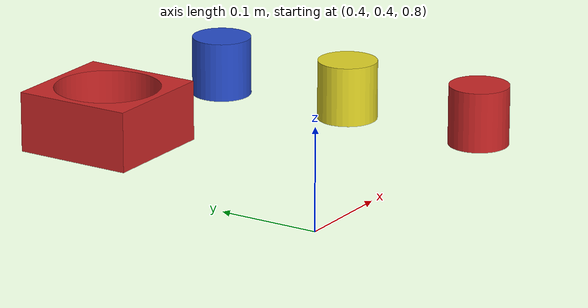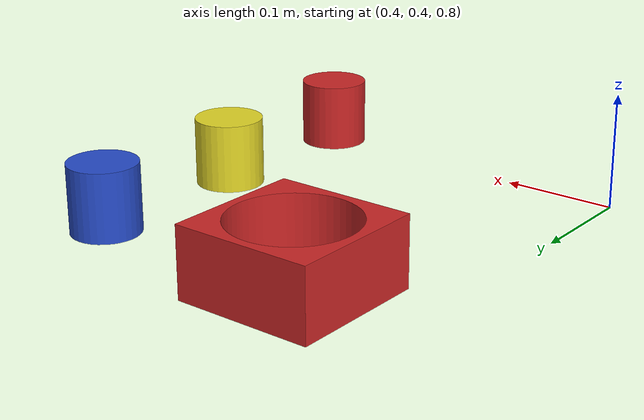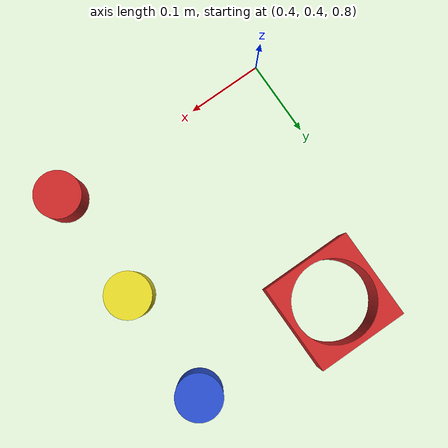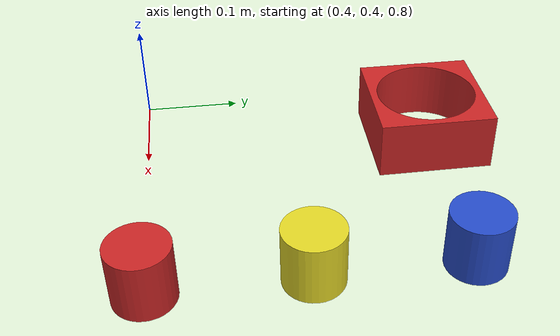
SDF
<sdf version="1.4">
 <world name="default">
  <physics type="ode">
   <gravity>0 0 -9.81</gravity>
   <ode>
    <solver><type>quick</type><iters>20</iters><sor>1.0</sor></solver>
    <constraints>
     <cfm>0.0</cfm>
     <erp>0.2</erp>
     <contact_max_correcting_vel>100.0</contact_max_correcting_vel>
     <contact_surface_layer>0.0</contact_surface_layer>
    </constraints>
   </ode>
   <real_time_update_rate>1000</real_time_update_rate>
   <max_step_size>0.001</max_step_size>
  </physics>
  <light type="directional" name="light1">
   <pose>2 0 10 0 0 0</pose>
   <diffuse>1.0 1.0 1.0 1</diffuse>
   <specular>0.1 0.1 0.1 1</specular>
   <attenuation>
    <range>20</range>
    <constant>0.9</constant>
    <linear>0.01</linear>
    <quadratic>0.001</quadratic>
   </attenuation>
   <direction>0.2 0.0 -1.0</direction>
  </light>
  <include><uri>model://ground_plane</uri></include>
  <include><uri>model://0cylinder_red</uri><pose>0.7 0.4 0.83 0 0 0</pose></include>
  <include><uri>model://0cylinder_yellow</uri><pose>0.7 0.55 0.83 0 0 0</pose></include>
  <include><uri>model://0cylinder_blue</uri><pose>0.7 0.7 0.83 0 0 0</pose></include>
  <include><uri>model://0hole_red</uri><pose>0.5 0.7 0.83 0 0 0</pose></include>
 </world>
</sdf>

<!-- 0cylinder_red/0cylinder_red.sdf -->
<sdf version='1.4'>
  <model name="0cylinder_red">
      <static>0</static>
      <link name='link'>
        <inertial>
          <mass>0.25</mass>
          <inertia>
            <ixx>0.000041667</ixx>
            <ixy>0.000000</ixy>
            <ixz>0.000000</ixz>
            <iyy>0.000041667</iyy>
            <iyz>0.000000</iyz>
            <izz>0.000041667</izz>
          </inertia>
        </inertial>
        <visual name='visual'>
 	  <material>
            <script>
              <uri>file://media/materials/scripts/gazebo.material</uri>
              <name>Gazebo/Red</name>
            </script>
  	  </material>
          <geometry>
            <mesh>
              <uri>model://0cylinder_red/meshes/0cylinder_red.dae</uri>
	          <scale> 1 1 1 </scale>
            </mesh>
          </geometry>
        </visual>
        <collision name='collision'>
          <geometry>
            <box>
              <size>0.06 0.06 0.06</size>
            </box>
          </geometry>
          <surface>
            <friction>
              <ode>
                <mu>30000.0</mu>
                <mu2>30000.0</mu2>
              </ode>
            </friction>
            <contact>
              <ode>
                <kp>1000000.0</kp>
                <kd>100.0</kd>
                <max_vel>1.0</max_vel>
                <min_depth>0.0025</min_depth>
              </ode>
            </contact>
          </surface>
        </collision>
        <velocity_decay>
          <linear>0.000000</linear>
          <angular>0.000000</angular>
        </velocity_decay>
        <self_collide>0</self_collide>
        <kinematic>0</kinematic>
        <gravity>1</gravity>
      </link>
  </model>
</sdf>

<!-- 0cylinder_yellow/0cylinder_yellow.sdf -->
<sdf version='1.4'>
  <model name="0cylinder_yellow">
      <static>0</static>
      <link name='link'>
        <inertial>
          <mass>0.25</mass>
          <inertia>
            <ixx>0.000041667</ixx>
            <ixy>0.000000</ixy>
            <ixz>0.000000</ixz>
            <iyy>0.000041667</iyy>
            <iyz>0.000000</iyz>
            <izz>0.000041667</izz>
          </inertia>
        </inertial>
        <visual name='visual'>
	  <material>
            <script>
              <uri>file://media/materials/scripts/gazebo.material</uri>
              <name>Gazebo/Yellow</name>
            </script>
  	  </material>
          <geometry>
            <mesh>
              <uri>model://0cylinder_yellow/meshes/0cylinder_yellow.dae</uri>
	          <scale> 1 1 1 </scale>
            </mesh>
          </geometry>
        </visual>
        <collision name='collision'>
          <geometry>
            <box>
              <size>0.06 0.06 0.06</size>
            </box>
          </geometry>
          <surface>
            <friction>
              <ode>
                <mu>30000.0</mu>
                <mu2>30000.0</mu2>
              </ode>
            </friction>
            <contact>
              <ode>
                <kp>1000000.0</kp>
                <kd>100.0</kd>
                <max_vel>1.0</max_vel>
                <min_depth>0.0025</min_depth>
              </ode>
            </contact>
          </surface>
        </collision>
        <velocity_decay>
          <linear>0.000000</linear>
          <angular>0.000000</angular>
        </velocity_decay>
        <self_collide>0</self_collide>
        <kinematic>0</kinematic>
        <gravity>1</gravity>
      </link>
  </model>
</sdf>

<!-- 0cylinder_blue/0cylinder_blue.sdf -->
<sdf version='1.4'>
  <model name="0cylinder_blue">
      <static>0</static>
      <link name='link'>
        <inertial>
          <mass>0.25</mass>
          <inertia>
            <ixx>0.000041667</ixx>
            <ixy>0.000000</ixy>
            <ixz>0.000000</ixz>
            <iyy>0.000041667</iyy>
            <iyz>0.000000</iyz>
            <izz>0.000041667</izz>
          </inertia>
        </inertial>
        <visual name='visual'>
 	  <material>
            <script>
              <uri>file://media/materials/scripts/gazebo.material</uri>
              <name>Gazebo/Blue</name>
            </script>
  	  </material>
          <geometry>
            <mesh>
              <uri>model://0cylinder_blue/meshes/0cylinder_blue.dae</uri>
	          <scale> 1 1 1 </scale>
            </mesh>
          </geometry>
        </visual>
        <collision name='collision'>
          <geometry>
            <box>
              <size>0.06 0.06 0.06</size>
            </box>
          </geometry>
          <surface>
            <friction>
              <ode>
                <mu>30000.0</mu>
                <mu2>30000.0</mu2>
              </ode>
            </friction>
            <contact>
              <ode>
                <kp>1000000.0</kp>
                <kd>100.0</kd>
                <max_vel>1.0</max_vel>
                <min_depth>0.0025</min_depth>
              </ode>
            </contact>
          </surface>
        </collision>
        <velocity_decay>
          <linear>0.000000</linear>
          <angular>0.000000</angular>
        </velocity_decay>
        <self_collide>0</self_collide>
        <kinematic>0</kinematic>
        <gravity>1</gravity>
      </link>
  </model>
</sdf>

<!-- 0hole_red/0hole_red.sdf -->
<sdf version='1.4'>
  <model name="0hole_red">
      <static>0</static>
      <link name='link'>
        <inertial>
          <mass>250</mass>
          <inertia>
            <ixx>0.000041667</ixx>
            <ixy>0.000000</ixy>
            <ixz>0.000000</ixz>
            <iyy>0.000041667</iyy>
            <iyz>0.000000</iyz>
            <izz>0.000041667</izz>
          </inertia>
        </inertial>
        <visual name='visual'>
	  <material>
            <script>
              <uri>file://media/materials/scripts/gazebo.material</uri>
              <name>Gazebo/Red</name>
            </script>
  	  </material>
          <geometry>
            <mesh>
              <uri>model://0hole_red/meshes/0hole_red.dae</uri>
	          <scale> 1.5 1.5 1 </scale>
            </mesh>
          </geometry>
        </visual>
        <collision name='collision'>
          <geometry>
            <mesh>
              <uri>model://0hole_red/meshes/0hole_red.dae</uri>
	          <scale> 1.5 1.5 1 </scale>
            </mesh>
          </geometry>
          <surface>
            <friction>
              <ode>
                <mu>30000.0</mu>
                <mu2>30000.0</mu2>
              </ode>
            </friction>
            <contact>
              <ode>
                <kp>1000000.0</kp>
                <kd>100.0</kd>
                <max_vel>1.0</max_vel>
                <min_depth>0.0025</min_depth>
              </ode>
            </contact>
          </surface>
        </collision>
        <velocity_decay>
          <linear>0.000000</linear>
          <angular>0.000000</angular>
        </velocity_decay>
        <self_collide>0</self_collide>
        <kinematic>0</kinematic>
        <gravity>1</gravity>
      </link>
  </model>
</sdf>
